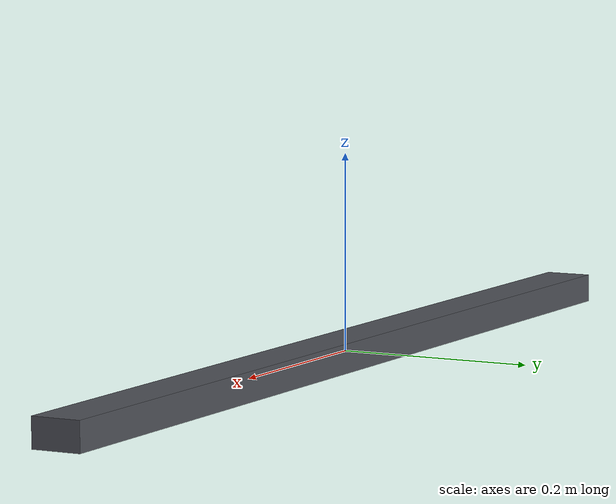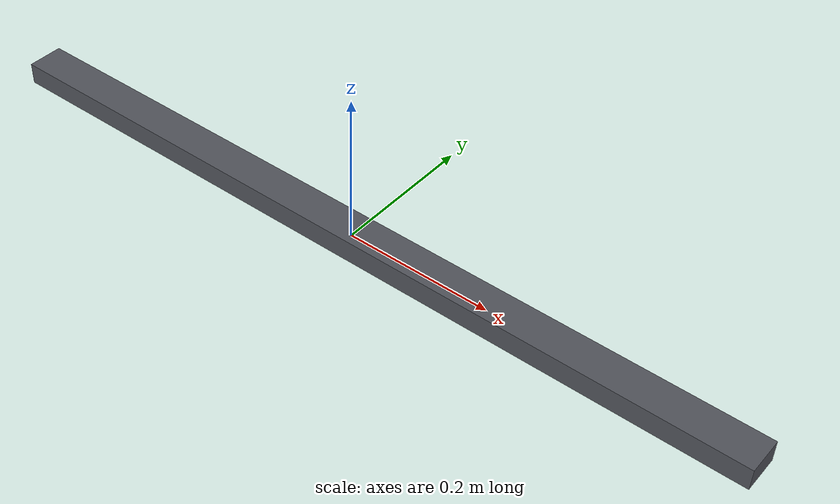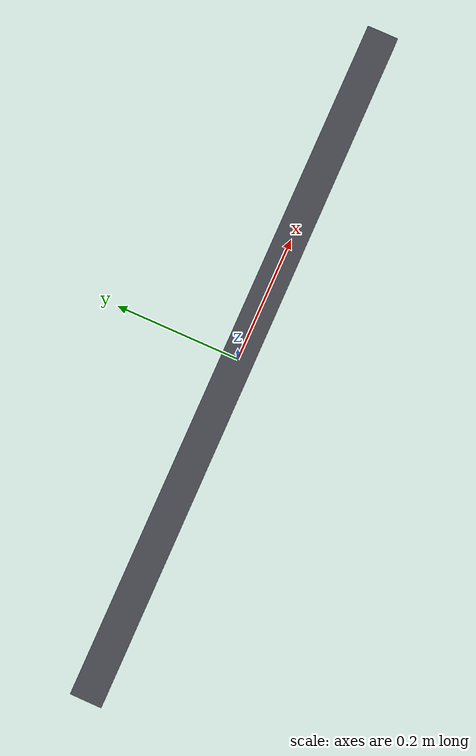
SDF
<?xml version="1.0"?>
<sdf version="1.7">
  <model name="test_beam">
    <static>true</static>
    <link name="link">
      <collision name="collision">
        <geometry>
          <box>
            <size>1.1 0.05 0.03</size>
          </box>
        </geometry>
      </collision>
      <visual name="visual">
        <geometry>
          <box>
            <size>1.1 0.05 0.03</size>
          </box>
        </geometry>
        <material>
          <ambient>0.14 0.15 0.16 1</ambient>
          <diffuse>0.32 0.33 0.36 1</diffuse>
        </material>
      </visual>
    </link>
  </model>
</sdf>
